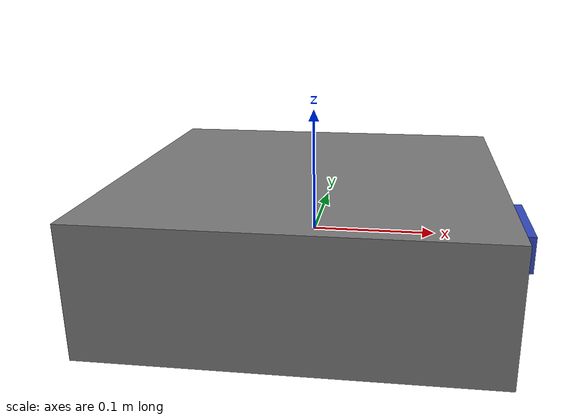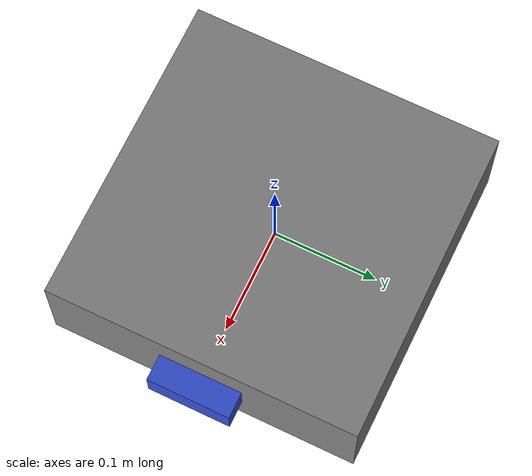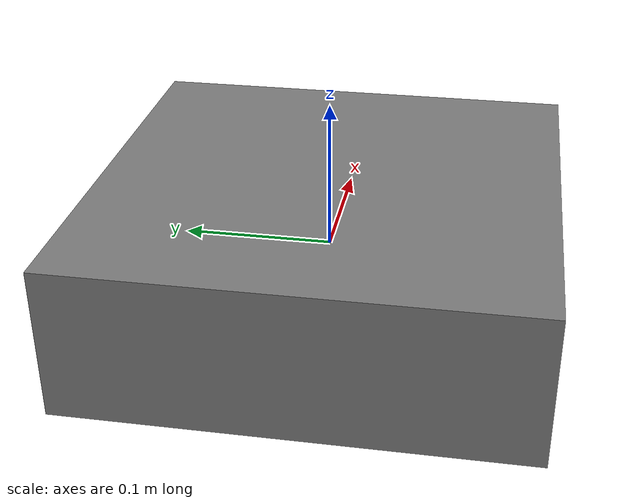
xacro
<?xml version="1.0"?>
<robot name="simple_quadrotor" xmlns:xacro="http://ros.org/wiki/xacro">

  <!-- Properties -->
  <xacro:property name="mass" value="0.5" />
  <xacro:property name="body_width" value="0.3" />
  <xacro:property name="body_height" value="0.1" />
  <xacro:property name="camera_mass" value="0.01" />

  <!-- Base link (quadrotor body) -->
  <link name="base_link">
    <inertial>
      <mass value="${mass}" />
      <origin xyz="0 0 0" rpy="0 0 0"/>
      <inertia ixx="0.001" ixy="0" ixz="0" iyy="0.001" iyz="0" izz="0.002" />
    </inertial>

    <visual>
      <origin xyz="0 0 0" rpy="0 0 0"/>
      <geometry>
        <box size="${body_width} ${body_width} ${body_height}"/>
      </geometry>
      <material name="gray">
        <color rgba="0.5 0.5 0.5 1.0"/>
      </material>
    </visual>

    <collision>
      <origin xyz="0 0 0" rpy="0 0 0"/>
      <geometry>
        <box size="${body_width} ${body_width} ${body_height}"/>
      </geometry>
    </collision>
  </link>

  <!-- Depth Camera Link -->
  <link name="camera_link">
    <inertial>
      <mass value="${camera_mass}" />
      <origin xyz="0 0 0" rpy="0 0 0"/>
      <inertia ixx="1e-6" ixy="0" ixz="0" iyy="1e-6" iyz="0" izz="1e-6" />
    </inertial>

    <visual>
      <origin xyz="0 0 0" rpy="0 0 0"/>
      <geometry>
        <box size="0.05 0.08 0.03"/>
      </geometry>
      <material name="camera_blue">
        <color rgba="0.2 0.3 0.8 1.0"/>
      </material>
    </visual>

    <collision>
      <origin xyz="0 0 0" rpy="0 0 0"/>
      <geometry>
        <box size="0.05 0.08 0.03"/>
      </geometry>
    </collision>
  </link>

  <!-- Attach camera to quadrotor base -->
  <joint name="camera_joint" type="fixed">
    <parent link="base_link"/>
    <child link="camera_link"/>
    <origin xyz="0.15 0 0" rpy="0 0 0"/>
  </joint>

  <!-- Camera Optical Frame -->
  <link name="camera_depth_optical_frame"/>

  <joint name="camera_optical_joint" type="fixed">
    <parent link="camera_link"/>
    <child link="camera_depth_optical_frame"/>
    <origin xyz="0 0 0" rpy="${-pi/2} 0 ${-pi/2}"/>
  </joint>

  <!-- Gazebo properties for base_link -->
  <gazebo reference="base_link">
    <material>Gazebo/Grey</material>
    <gravity>true</gravity>
  </gazebo>

  <!-- Gazebo Kinect Plugin -->
  <gazebo reference="camera_link">
    <sensor type="depth" name="camera">
      <always_on>true</always_on>
      <update_rate>30.0</update_rate>
      <camera>
        <horizontal_fov>1.047198</horizontal_fov>
        <image>
          <width>640</width>
          <height>480</height>
          <format>R8G8B8</format>
        </image>
        <clip>
          <near>0.2</near>
          <far>5.0</far>
        </clip>
        <noise>
          <type>gaussian</type>
          <mean>0.0</mean>
          <stddev>0.007</stddev>
        </noise>
      </camera>

      <plugin name="kinect_camera_controller" filename="libgazebo_ros_openni_kinect.so">
        <alwaysOn>true</alwaysOn>
        <updateRate>30.0</updateRate>
        <cameraName>camera</cameraName>
        <imageTopicName>/camera/rgb/image_raw</imageTopicName>
        <cameraInfoTopicName>/camera/rgb/camera_info</cameraInfoTopicName>
        <depthImageTopicName>/camera/depth/image_raw</depthImageTopicName>
        <depthImageCameraInfoTopicName>/camera/depth/camera_info</depthImageCameraInfoTopicName>
        <pointCloudTopicName>/camera/depth/points</pointCloudTopicName>
        <frameName>camera_depth_optical_frame</frameName>
        <pointCloudCutoff>0.2</pointCloudCutoff>
        <pointCloudCutoffMax>5.0</pointCloudCutoffMax>

        <CxPrime>321.04638671875</CxPrime>
        <Cx>321.04638671875</Cx>
        <Cy>243.44969177246094</Cy>
        <focalLength>387.229248046875</focalLength>
        <hackBaseline>0.0</hackBaseline>

        <distortionK1>0.0</distortionK1>
        <distortionK2>0.0</distortionK2>
        <distortionK3>0.0</distortionK3>
        <distortionT1>0.0</distortionT1>
        <distortionT2>0.0</distortionT2>
      </plugin>
    </sensor>
    <material>Gazebo/Blue</material>
  </gazebo>

  <!-- Quadrotor velocity control using force plugin -->
  <gazebo>
    <plugin name="quadrotor_velocity_controller" filename="libgazebo_ros_force.so">
      <alwaysOn>true</alwaysOn>
      <updateRate>100.0</updateRate>
      <bodyName>base_link</bodyName>
      <topicName>/cmd_force</topicName>
    </plugin>
  </gazebo>

  <!-- Ground Truth Odometry Plugin (P3D for full 3D state) -->
  <gazebo>
    <plugin name="ground_truth_odometry" filename="libgazebo_ros_p3d.so">
      <alwaysOn>true</alwaysOn>
      <updateRate>100.0</updateRate>
      <bodyName>base_link</bodyName>
      <topicName>/ground_truth/state</topicName>
      <gaussianNoise>0.0</gaussianNoise>
      <frameName>world</frameName>
      <xyzOffsets>0 0 0</xyzOffsets>
      <rpyOffsets>0 0 0</rpyOffsets>
    </plugin>
  </gazebo>

</robot>
